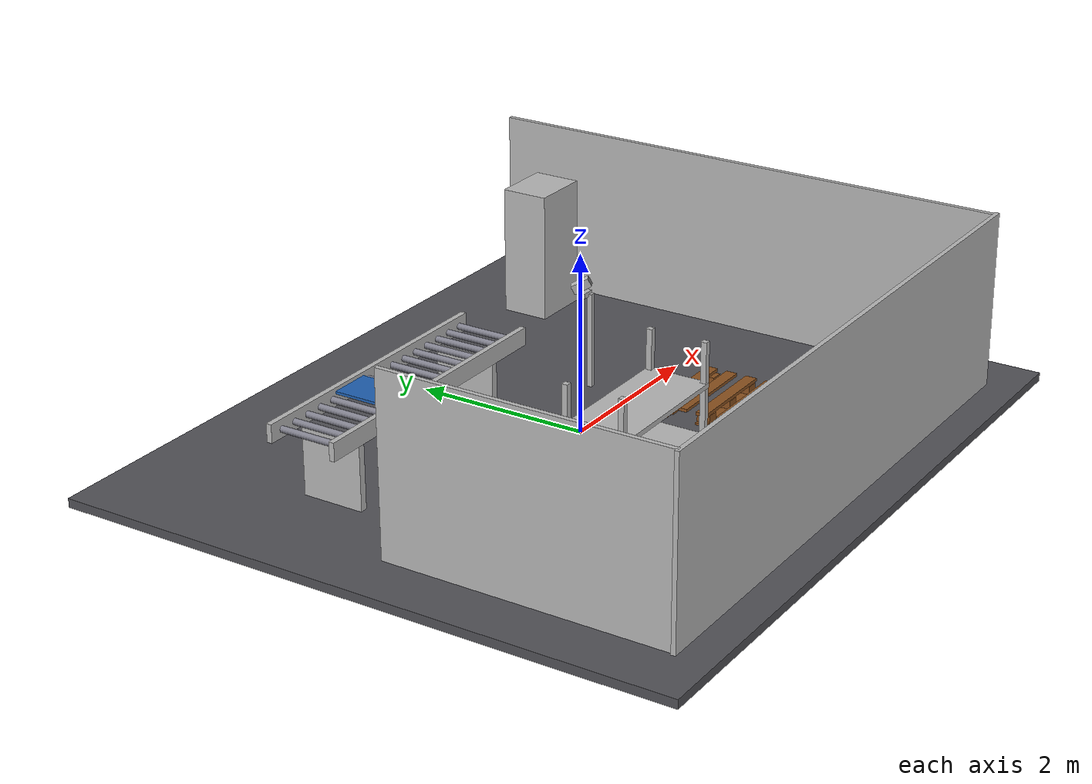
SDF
<?xml version="1.0"?>
<sdf version="1.8">
  <world name="ahead_workcell_v3">
    <plugin filename="ignition-gazebo-physics-system" name="ignition::gazebo::systems::Physics"/>
    <plugin filename="ignition-gazebo-user-commands-system" name="ignition::gazebo::systems::UserCommands"/>
    <plugin filename="ignition-gazebo-scene-broadcaster-system" name="ignition::gazebo::systems::SceneBroadcaster"/>
    <plugin filename="ignition-gazebo-sensors-system" name="ignition::gazebo::systems::Sensors"><render_engine>ogre2</render_engine></plugin>
    <gravity>0 0 -9.80665</gravity>
    <physics name="default_physics" type="ignored"><max_step_size>0.001</max_step_size><real_time_factor>1.0</real_time_factor></physics>
    <light type="directional" name="sun"><pose>0 0 8 0 0 0</pose><diffuse>0.8 0.8 0.8 1</diffuse><direction>-0.4 0.3 -1</direction></light>

    <model name="floor"><static>true</static><link name="floor_link">
      <collision name="collision"><pose>0 0 -0.05 0 0 0</pose><geometry><box><size>8 7 0.10</size></box></geometry></collision>
      <visual name="visual"><pose>0 0 -0.05 0 0 0</pose><geometry><box><size>8 7 0.10</size></box></geometry><material><ambient>0.22 0.22 0.23 1</ambient><diffuse>0.32 0.32 0.34 1</diffuse></material></visual>
    </link></model>

    <model name="conveyor_main"><static>true</static><link name="conveyor_link">
      <collision name="collision">
        <pose>-1.50 1.20 0.75 0 0 0</pose>
        <geometry>
          <box><size>3.20 0.80 0.20</size></box>
        </geometry>
        <surface>
          <friction>
            <ode>
              <mu>0.7</mu>
              <mu2>150</mu2>
              <fdir1>0 1 0</fdir1>
            </ode>
          </friction>
        </surface>
      </collision>
      <visual name="left_rail"><pose>-1.50 0.82 0.86 0 0 0</pose><geometry><box><size>3.30 0.06 0.20</size></box></geometry></visual>
      <visual name="right_rail"><pose>-1.50 1.58 0.86 0 0 0</pose><geometry><box><size>3.30 0.06 0.20</size></box></geometry></visual>
      <visual name="roller_00"><pose>-3.00 1.20 0.86 1.57079632679 0 0</pose><geometry><cylinder><radius>0.035</radius><length>0.68</length></cylinder></geometry><material><ambient>0.35 0.35 0.38 1</ambient><diffuse>0.50 0.50 0.55 1</diffuse></material></visual>
        <visual name="roller_01"><pose>-2.80 1.20 0.86 1.57079632679 0 0</pose><geometry><cylinder><radius>0.035</radius><length>0.68</length></cylinder></geometry><material><ambient>0.35 0.35 0.38 1</ambient><diffuse>0.50 0.50 0.55 1</diffuse></material></visual>
        <visual name="roller_02"><pose>-2.60 1.20 0.86 1.57079632679 0 0</pose><geometry><cylinder><radius>0.035</radius><length>0.68</length></cylinder></geometry><material><ambient>0.35 0.35 0.38 1</ambient><diffuse>0.50 0.50 0.55 1</diffuse></material></visual>
        <visual name="roller_03"><pose>-2.40 1.20 0.86 1.57079632679 0 0</pose><geometry><cylinder><radius>0.035</radius><length>0.68</length></cylinder></geometry><material><ambient>0.35 0.35 0.38 1</ambient><diffuse>0.50 0.50 0.55 1</diffuse></material></visual>
        <visual name="roller_04"><pose>-2.20 1.20 0.86 1.57079632679 0 0</pose><geometry><cylinder><radius>0.035</radius><length>0.68</length></cylinder></geometry><material><ambient>0.35 0.35 0.38 1</ambient><diffuse>0.50 0.50 0.55 1</diffuse></material></visual>
        <visual name="roller_05"><pose>-2.00 1.20 0.86 1.57079632679 0 0</pose><geometry><cylinder><radius>0.035</radius><length>0.68</length></cylinder></geometry><material><ambient>0.35 0.35 0.38 1</ambient><diffuse>0.50 0.50 0.55 1</diffuse></material></visual>
        <visual name="roller_06"><pose>-1.80 1.20 0.86 1.57079632679 0 0</pose><geometry><cylinder><radius>0.035</radius><length>0.68</length></cylinder></geometry><material><ambient>0.35 0.35 0.38 1</ambient><diffuse>0.50 0.50 0.55 1</diffuse></material></visual>
        <visual name="roller_07"><pose>-1.60 1.20 0.86 1.57079632679 0 0</pose><geometry><cylinder><radius>0.035</radius><length>0.68</length></cylinder></geometry><material><ambient>0.35 0.35 0.38 1</ambient><diffuse>0.50 0.50 0.55 1</diffuse></material></visual>
        <visual name="roller_08"><pose>-1.40 1.20 0.86 1.57079632679 0 0</pose><geometry><cylinder><radius>0.035</radius><length>0.68</length></cylinder></geometry><material><ambient>0.35 0.35 0.38 1</ambient><diffuse>0.50 0.50 0.55 1</diffuse></material></visual>
        <visual name="roller_09"><pose>-1.20 1.20 0.86 1.57079632679 0 0</pose><geometry><cylinder><radius>0.035</radius><length>0.68</length></cylinder></geometry><material><ambient>0.35 0.35 0.38 1</ambient><diffuse>0.50 0.50 0.55 1</diffuse></material></visual>
        <visual name="roller_10"><pose>-1.00 1.20 0.86 1.57079632679 0 0</pose><geometry><cylinder><radius>0.035</radius><length>0.68</length></cylinder></geometry><material><ambient>0.35 0.35 0.38 1</ambient><diffuse>0.50 0.50 0.55 1</diffuse></material></visual>
        <visual name="roller_11"><pose>-0.80 1.20 0.86 1.57079632679 0 0</pose><geometry><cylinder><radius>0.035</radius><length>0.68</length></cylinder></geometry><material><ambient>0.35 0.35 0.38 1</ambient><diffuse>0.50 0.50 0.55 1</diffuse></material></visual>
        <visual name="roller_12"><pose>-0.60 1.20 0.86 1.57079632679 0 0</pose><geometry><cylinder><radius>0.035</radius><length>0.68</length></cylinder></geometry><material><ambient>0.35 0.35 0.38 1</ambient><diffuse>0.50 0.50 0.55 1</diffuse></material></visual>
        <visual name="roller_13"><pose>-0.40 1.20 0.86 1.57079632679 0 0</pose><geometry><cylinder><radius>0.035</radius><length>0.68</length></cylinder></geometry><material><ambient>0.35 0.35 0.38 1</ambient><diffuse>0.50 0.50 0.55 1</diffuse></material></visual>
        <visual name="roller_14"><pose>-0.20 1.20 0.86 1.57079632679 0 0</pose><geometry><cylinder><radius>0.035</radius><length>0.68</length></cylinder></geometry><material><ambient>0.35 0.35 0.38 1</ambient><diffuse>0.50 0.50 0.55 1</diffuse></material></visual>
        <visual name="roller_15"><pose>0.00 1.20 0.86 1.57079632679 0 0</pose><geometry><cylinder><radius>0.035</radius><length>0.68</length></cylinder></geometry><material><ambient>0.35 0.35 0.38 1</ambient><diffuse>0.50 0.50 0.55 1</diffuse></material></visual>
      <visual name="leg_a"><pose>-2.65 1.20 0.38 0 0 0</pose><geometry><box><size>0.08 0.70 0.75</size></box></geometry></visual>
      <visual name="leg_b"><pose>-0.35 1.20 0.38 0 0 0</pose><geometry><box><size>0.08 0.70 0.75</size></box></geometry></visual>
    </link>

    <plugin filename="libignition-gazebo-track-controller-system.so"
            name="gz::sim::systems::TrackController">
      <link>conveyor_link</link>
    </plugin>
    </model>

    <model name="inline_scale"><static>true</static><link name="scale_link"><visual name="platform"><pose>-1.90 1.20 0.905 0 0 0</pose><geometry><box><size>0.46 0.72 0.03</size></box></geometry><material><ambient>0.10 0.25 0.45 1</ambient><diffuse>0.12 0.38 0.70 1</diffuse></material></visual></link></model>

    <model name="pallet_main">
      <static>true</static>
      <pose>1.35 -1.00 0 0 0 0</pose>
      <link name="pallet_link">

      <collision name="bottom_runner_0_collision">
        <pose>0 -0.48 0.0125 0 0 0</pose>
        <geometry><box><size>1.1 0.14 0.025</size></box></geometry>
      </collision>
      <visual name="bottom_runner_0_visual">
        <pose>0 -0.48 0.0125 0 0 0</pose>
        <geometry><box><size>1.1 0.14 0.025</size></box></geometry>
        <material>
          <ambient>0.34 0.20 0.08 1</ambient>
          <diffuse>0.55 0.32 0.12 1</diffuse>
        </material>
      </visual>

      <collision name="bottom_runner_1_collision">
        <pose>0 0.0 0.0125 0 0 0</pose>
        <geometry><box><size>1.1 0.14 0.025</size></box></geometry>
      </collision>
      <visual name="bottom_runner_1_visual">
        <pose>0 0.0 0.0125 0 0 0</pose>
        <geometry><box><size>1.1 0.14 0.025</size></box></geometry>
        <material>
          <ambient>0.34 0.20 0.08 1</ambient>
          <diffuse>0.55 0.32 0.12 1</diffuse>
        </material>
      </visual>

      <collision name="bottom_runner_2_collision">
        <pose>0 0.48 0.0125 0 0 0</pose>
        <geometry><box><size>1.1 0.14 0.025</size></box></geometry>
      </collision>
      <visual name="bottom_runner_2_visual">
        <pose>0 0.48 0.0125 0 0 0</pose>
        <geometry><box><size>1.1 0.14 0.025</size></box></geometry>
        <material>
          <ambient>0.34 0.20 0.08 1</ambient>
          <diffuse>0.55 0.32 0.12 1</diffuse>
        </material>
      </visual>

      <collision name="support_block_0_0_collision">
        <pose>-0.44 -0.44 0.07 0 0 0</pose>
        <geometry><box><size>0.14 0.15 0.09</size></box></geometry>
      </collision>
      <visual name="support_block_0_0_visual">
        <pose>-0.44 -0.44 0.07 0 0 0</pose>
        <geometry><box><size>0.14 0.15 0.09</size></box></geometry>
        <material>
          <ambient>0.34 0.20 0.08 1</ambient>
          <diffuse>0.55 0.32 0.12 1</diffuse>
        </material>
      </visual>

      <collision name="support_block_0_1_collision">
        <pose>-0.44 0.0 0.07 0 0 0</pose>
        <geometry><box><size>0.14 0.15 0.09</size></box></geometry>
      </collision>
      <visual name="support_block_0_1_visual">
        <pose>-0.44 0.0 0.07 0 0 0</pose>
        <geometry><box><size>0.14 0.15 0.09</size></box></geometry>
        <material>
          <ambient>0.34 0.20 0.08 1</ambient>
          <diffuse>0.55 0.32 0.12 1</diffuse>
        </material>
      </visual>

      <collision name="support_block_0_2_collision">
        <pose>-0.44 0.44 0.07 0 0 0</pose>
        <geometry><box><size>0.14 0.15 0.09</size></box></geometry>
      </collision>
      <visual name="support_block_0_2_visual">
        <pose>-0.44 0.44 0.07 0 0 0</pose>
        <geometry><box><size>0.14 0.15 0.09</size></box></geometry>
        <material>
          <ambient>0.34 0.20 0.08 1</ambient>
          <diffuse>0.55 0.32 0.12 1</diffuse>
        </material>
      </visual>

      <collision name="support_block_1_0_collision">
        <pose>0.0 -0.44 0.07 0 0 0</pose>
        <geometry><box><size>0.14 0.15 0.09</size></box></geometry>
      </collision>
      <visual name="support_block_1_0_visual">
        <pose>0.0 -0.44 0.07 0 0 0</pose>
        <geometry><box><size>0.14 0.15 0.09</size></box></geometry>
        <material>
          <ambient>0.34 0.20 0.08 1</ambient>
          <diffuse>0.55 0.32 0.12 1</diffuse>
        </material>
      </visual>

      <collision name="support_block_1_1_collision">
        <pose>0.0 0.0 0.07 0 0 0</pose>
        <geometry><box><size>0.14 0.15 0.09</size></box></geometry>
      </collision>
      <visual name="support_block_1_1_visual">
        <pose>0.0 0.0 0.07 0 0 0</pose>
        <geometry><box><size>0.14 0.15 0.09</size></box></geometry>
        <material>
          <ambient>0.34 0.20 0.08 1</ambient>
          <diffuse>0.55 0.32 0.12 1</diffuse>
        </material>
      </visual>

      <collision name="support_block_1_2_collision">
        <pose>0.0 0.44 0.07 0 0 0</pose>
        <geometry><box><size>0.14 0.15 0.09</size></box></geometry>
      </collision>
      <visual name="support_block_1_2_visual">
        <pose>0.0 0.44 0.07 0 0 0</pose>
        <geometry><box><size>0.14 0.15 0.09</size></box></geometry>
        <material>
          <ambient>0.34 0.20 0.08 1</ambient>
          <diffuse>0.55 0.32 0.12 1</diffuse>
        </material>
      </visual>

      <collision name="support_block_2_0_collision">
        <pose>0.44 -0.44 0.07 0 0 0</pose>
        <geometry><box><size>0.14 0.15 0.09</size></box></geometry>
      </collision>
      <visual name="support_block_2_0_visual">
        <pose>0.44 -0.44 0.07 0 0 0</pose>
        <geometry><box><size>0.14 0.15 0.09</size></box></geometry>
        <material>
          <ambient>0.34 0.20 0.08 1</ambient>
          <diffuse>0.55 0.32 0.12 1</diffuse>
        </material>
      </visual>

      <collision name="support_block_2_1_collision">
        <pose>0.44 0.0 0.07 0 0 0</pose>
        <geometry><box><size>0.14 0.15 0.09</size></box></geometry>
      </collision>
      <visual name="support_block_2_1_visual">
        <pose>0.44 0.0 0.07 0 0 0</pose>
        <geometry><box><size>0.14 0.15 0.09</size></box></geometry>
        <material>
          <ambient>0.34 0.20 0.08 1</ambient>
          <diffuse>0.55 0.32 0.12 1</diffuse>
        </material>
      </visual>

      <collision name="support_block_2_2_collision">
        <pose>0.44 0.44 0.07 0 0 0</pose>
        <geometry><box><size>0.14 0.15 0.09</size></box></geometry>
      </collision>
      <visual name="support_block_2_2_visual">
        <pose>0.44 0.44 0.07 0 0 0</pose>
        <geometry><box><size>0.14 0.15 0.09</size></box></geometry>
        <material>
          <ambient>0.34 0.20 0.08 1</ambient>
          <diffuse>0.55 0.32 0.12 1</diffuse>
        </material>
      </visual>

      <collision name="top_board_0_collision">
        <pose>0 -0.484 0.1325 0 0 0</pose>
        <geometry><box><size>1.1 0.13 0.035</size></box></geometry>
      </collision>
      <visual name="top_board_0_visual">
        <pose>0 -0.484 0.1325 0 0 0</pose>
        <geometry><box><size>1.1 0.13 0.035</size></box></geometry>
        <material>
          <ambient>0.34 0.20 0.08 1</ambient>
          <diffuse>0.55 0.32 0.12 1</diffuse>
        </material>
      </visual>

      <collision name="top_board_1_collision">
        <pose>0 -0.242 0.1325 0 0 0</pose>
        <geometry><box><size>1.1 0.13 0.035</size></box></geometry>
      </collision>
      <visual name="top_board_1_visual">
        <pose>0 -0.242 0.1325 0 0 0</pose>
        <geometry><box><size>1.1 0.13 0.035</size></box></geometry>
        <material>
          <ambient>0.34 0.20 0.08 1</ambient>
          <diffuse>0.55 0.32 0.12 1</diffuse>
        </material>
      </visual>

      <collision name="top_board_2_collision">
        <pose>0 0.0 0.1325 0 0 0</pose>
        <geometry><box><size>1.1 0.13 0.035</size></box></geometry>
      </collision>
      <visual name="top_board_2_visual">
        <pose>0 0.0 0.1325 0 0 0</pose>
        <geometry><box><size>1.1 0.13 0.035</size></box></geometry>
        <material>
          <ambient>0.34 0.20 0.08 1</ambient>
          <diffuse>0.55 0.32 0.12 1</diffuse>
        </material>
      </visual>

      <collision name="top_board_3_collision">
        <pose>0 0.242 0.1325 0 0 0</pose>
        <geometry><box><size>1.1 0.13 0.035</size></box></geometry>
      </collision>
      <visual name="top_board_3_visual">
        <pose>0 0.242 0.1325 0 0 0</pose>
        <geometry><box><size>1.1 0.13 0.035</size></box></geometry>
        <material>
          <ambient>0.34 0.20 0.08 1</ambient>
          <diffuse>0.55 0.32 0.12 1</diffuse>
        </material>
      </visual>

      <collision name="top_board_4_collision">
        <pose>0 0.484 0.1325 0 0 0</pose>
        <geometry><box><size>1.1 0.13 0.035</size></box></geometry>
      </collision>
      <visual name="top_board_4_visual">
        <pose>0 0.484 0.1325 0 0 0</pose>
        <geometry><box><size>1.1 0.13 0.035</size></box></geometry>
        <material>
          <ambient>0.34 0.20 0.08 1</ambient>
          <diffuse>0.55 0.32 0.12 1</diffuse>
        </material>
      </visual>

      </link>
    </model>

    <model name="buffer_rack"><static>true</static><pose>-1.80 -1.75 0 0 0 0</pose><link name="rack_link">
      <collision name="rack_envelope"><pose>0 0 0.95 0 0 0</pose><geometry><box><size>1.60 0.70 1.90</size></box></geometry></collision>
      <visual name="post_1"><pose>-0.75 -0.30 0.95 0 0 0</pose><geometry><box><size>0.06 0.06 1.90</size></box></geometry></visual>
      <visual name="post_2"><pose>0.75 -0.30 0.95 0 0 0</pose><geometry><box><size>0.06 0.06 1.90</size></box></geometry></visual>
      <visual name="post_3"><pose>-0.75 0.30 0.95 0 0 0</pose><geometry><box><size>0.06 0.06 1.90</size></box></geometry></visual>
      <visual name="post_4"><pose>0.75 0.30 0.95 0 0 0</pose><geometry><box><size>0.06 0.06 1.90</size></box></geometry></visual>
      <visual name="shelf_1"><pose>0 0 0.35 0 0 0</pose><geometry><box><size>1.55 0.68 0.05</size></box></geometry></visual>
      <visual name="shelf_2"><pose>0 0 0.90 0 0 0</pose><geometry><box><size>1.55 0.68 0.05</size></box></geometry></visual>
      <visual name="shelf_3"><pose>0 0 1.45 0 0 0</pose><geometry><box><size>1.55 0.68 0.05</size></box></geometry></visual>
    </link></model>

    <model name="camera_1_cctv_base">
      <static>true</static>
      <link name="camera_1_link">

        <visual name="mount_post">
          <pose>0.32 0.08 0.92 0 0 0</pose>
          <geometry>
            <box><size>0.055 0.055 1.05</size></box>
          </geometry>
        </visual>

        <visual name="mount_arm">
          <pose>0.285 0.115 1.445 0 0 0</pose>
          <geometry>
            <box><size>0.14 0.055 0.055</size></box>
          </geometry>
        </visual>

        <visual name="camera_housing">
          <pose>0.25 0.15 1.55 0 0.49 2.09</pose>
          <geometry>
            <box><size>0.20 0.105 0.095</size></box>
          </geometry>
        </visual>

        <sensor name="cctv_camera_1" type="camera">
          <pose>0.25 0.15 1.55 0 0.49 2.09</pose>

          <always_on>true</always_on>
          <update_rate>15</update_rate>

          <topic>/pac/top_camera/image</topic>

          <camera>
            <horizontal_fov>1.40</horizontal_fov>

            <image>
              <width>1280</width>
              <height>720</height>
              <format>R8G8B8</format>
            </image>

            <clip>
              <near>0.08</near>
              <far>8.0</far>
            </clip>
          </camera>

        </sensor>
      </link>
    </model>

    <model name="safety_fence"><static>true</static><link name="fence_link">
      <visual name="back"><pose>0 -3.10 1.00 0 0 0</pose><geometry><box><size>6.80 0.05 2.00</size></box></geometry></visual>
      <visual name="right"><pose>3.35 0 1.00 0 0 0</pose><geometry><box><size>0.05 6.20 2.00</size></box></geometry></visual>
      <visual name="left_back"><pose>-3.35 -1.50 1.00 0 0 0</pose><geometry><box><size>0.05 3.20 2.00</size></box></geometry></visual>
    </link></model>

    <model name="controller_cabinet"><static>true</static><pose>2.70 2.25 0 0 0 0</pose><link name="cabinet_link">
      <collision name="collision"><pose>0 0 0.75 0 0 0</pose><geometry><box><size>0.70 0.55 1.50</size></box></geometry></collision>
      <visual name="visual"><pose>0 0 0.75 0 0 0</pose><geometry><box><size>0.70 0.55 1.50</size></box></geometry></visual>
    </link></model>

    <!-- HDP160-31 is spawned separately only after verified description is available. -->
  </world>
</sdf>
